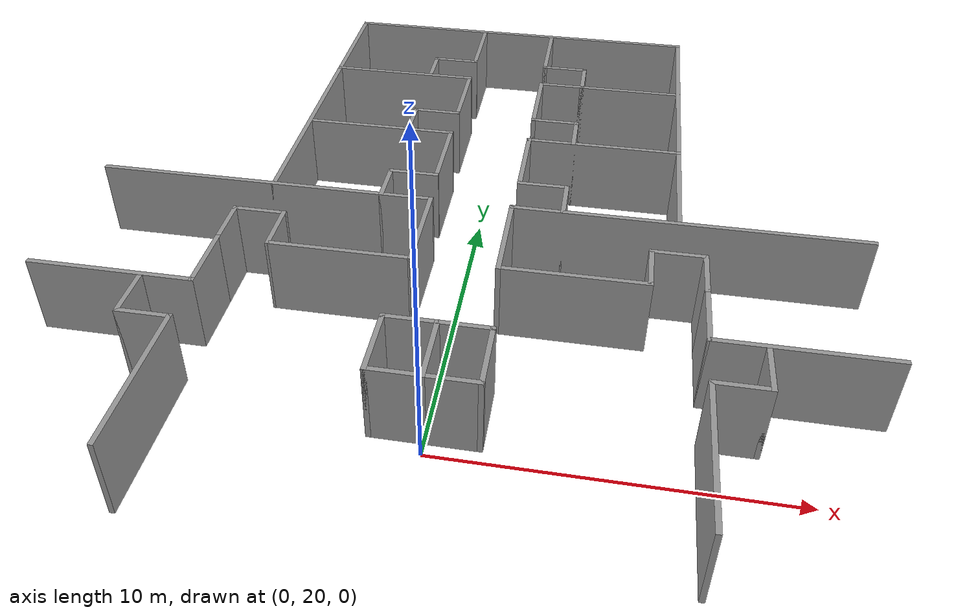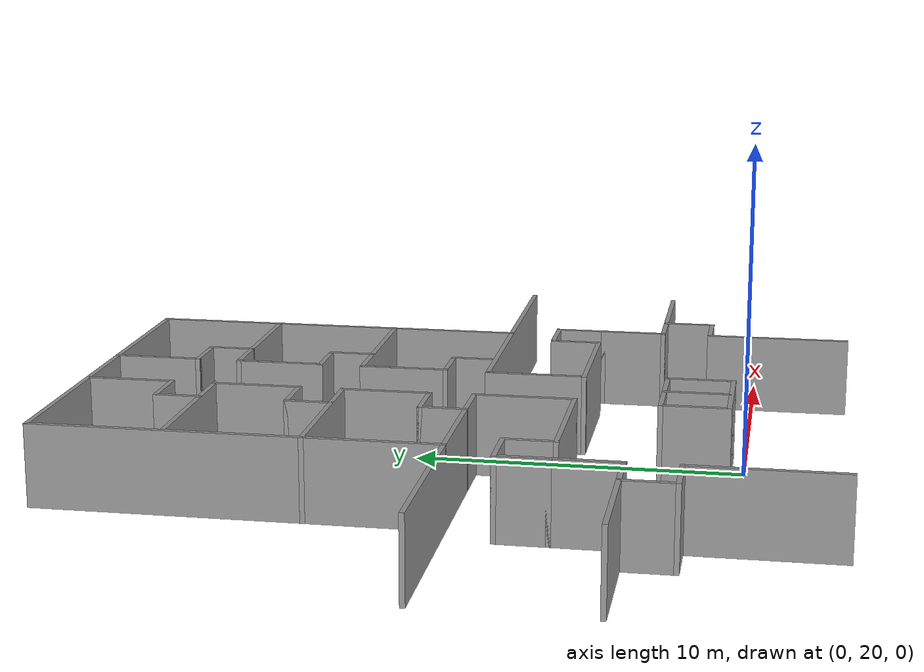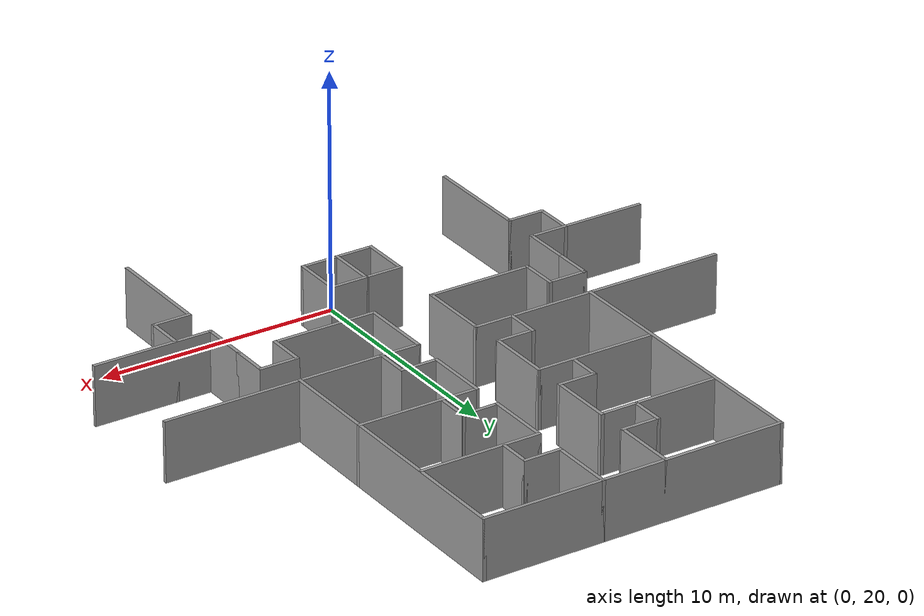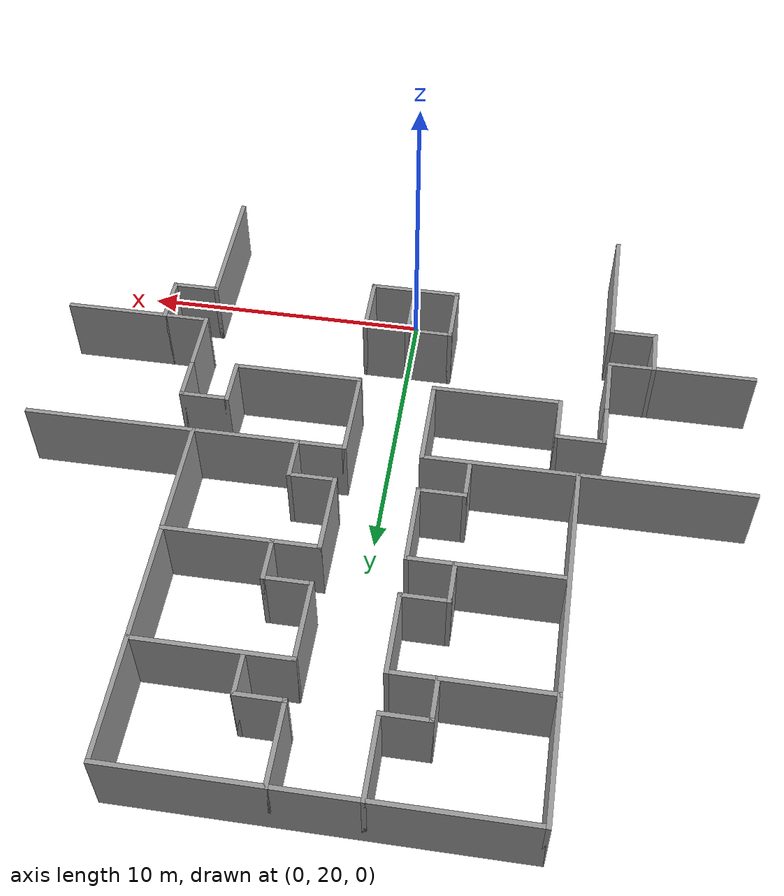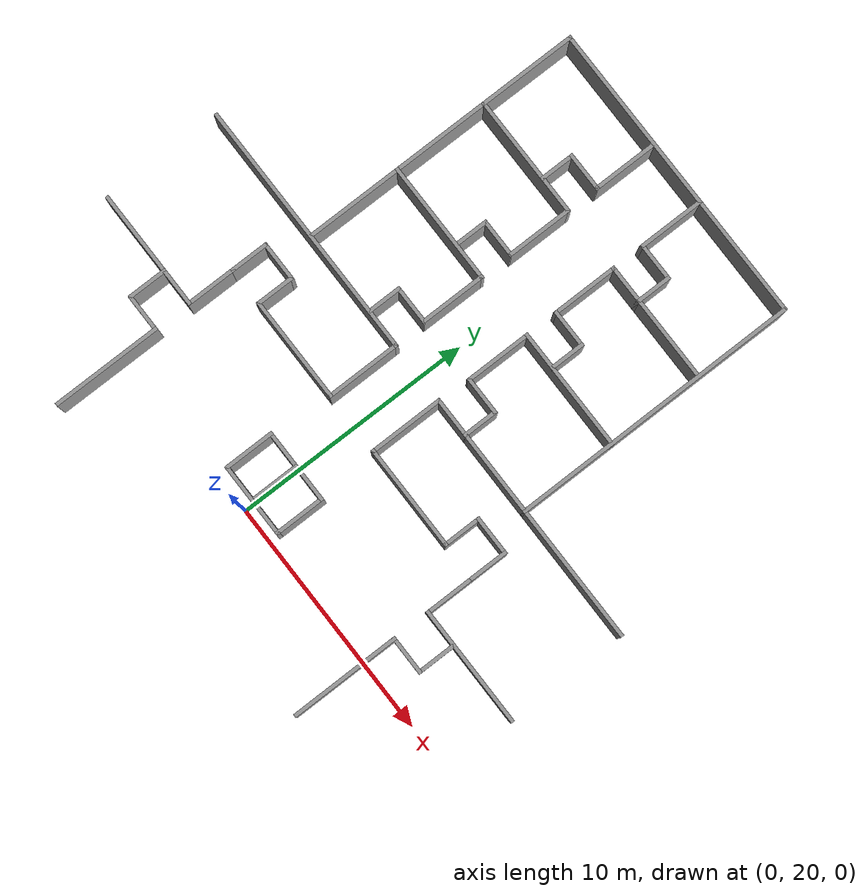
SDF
<sdf version="1.6">
 <model name="hospital__restricted_model">
  <pose>0.015862 19 0 0 -0 0</pose>
  <link name="Wall_100">
   <collision name="Wall_100_Collision">
    <geometry><box><size>2.8 0.15 2.5</size></box></geometry>
    <pose>0 0 1.25 0 -0 0</pose>
   </collision>
   <visual name="Wall_100_Visual">
    <pose>0 0 1.25 0 -0 0</pose>
    <geometry><box><size>2.8 0.15 2.5</size></box></geometry>
    <material>
     <script><uri>file://media/materials/scripts/gazebo.material</uri><name>Gazebo/Grey</name></script>
     <ambient>1 1 1 1</ambient>
    </material>
    <meta><layer>0</layer></meta>
   </visual>
   <pose>1.33414 19.675 0 0 -0 1.5708</pose>
  </link>
  <link name="Wall_110">
   <collision name="Wall_110_Collision">
    <geometry><box><size>3.15 0.15 2.5</size></box></geometry>
    <pose>0 0 1.25 0 -0 0</pose>
   </collision>
   <visual name="Wall_110_Visual">
    <pose>0 0 1.25 0 -0 0</pose>
    <geometry><box><size>3.15 0.15 2.5</size></box></geometry>
    <material>
     <script><uri>file://media/materials/scripts/gazebo.material</uri><name>Gazebo/Grey</name></script>
     <ambient>1 1 1 1</ambient>
    </material>
    <meta><layer>0</layer></meta>
   </visual>
   <pose>-0.015862 3.45 0 0 -0 0</pose>
  </link>
  <link name="Wall_112">
   <collision name="Wall_112_Collision">
    <geometry><box><size>3.15 0.15 2.5</size></box></geometry>
    <pose>0 0 1.25 0 -0 0</pose>
   </collision>
   <visual name="Wall_112_Visual">
    <pose>0 0 1.25 0 -0 0</pose>
    <geometry><box><size>3.15 0.15 2.5</size></box></geometry>
    <material>
     <script><uri>file://media/materials/scripts/gazebo.material</uri><name>Gazebo/Grey</name></script>
     <ambient>1 1 1 1</ambient>
    </material>
    <meta><layer>0</layer></meta>
   </visual>
   <pose>-0.015862 1.45 0 0 -0 0</pose>
  </link>
  <link name="Wall_114">
   <collision name="Wall_114_Collision">
    <geometry><box><size>2.15 0.15 2.5</size></box></geometry>
    <pose>0 0 1.25 0 -0 0</pose>
   </collision>
   <visual name="Wall_114_Visual">
    <pose>0 0 1.25 0 -0 0</pose>
    <geometry><box><size>2.15 0.15 2.5</size></box></geometry>
    <material>
     <script><uri>file://media/materials/scripts/gazebo.material</uri><name>Gazebo/Grey</name></script>
     <ambient>1 1 1 1</ambient>
    </material>
    <meta><layer>0</layer></meta>
   </visual>
   <pose>-1.51586 2.45 0 0 -0 -1.5708</pose>
  </link>
  <link name="Wall_116">
   <collision name="Wall_116_Collision">
    <geometry><box><size>2.15 0.15 2.5</size></box></geometry>
    <pose>0 0 1.25 0 -0 0</pose>
   </collision>
   <visual name="Wall_116_Visual">
    <pose>0 0 1.25 0 -0 0</pose>
    <geometry><box><size>2.15 0.15 2.5</size></box></geometry>
    <material>
     <script><uri>file://media/materials/scripts/gazebo.material</uri><name>Gazebo/Grey</name></script>
     <ambient>1 1 1 1</ambient>
    </material>
    <meta><layer>0</layer></meta>
   </visual>
   <pose>1.48414 2.45 0 0 -0 -1.5708</pose>
  </link>
  <link name="Wall_118">
   <collision name="Wall_118_Collision">
    <geometry><box><size>2.15 0.15 2.5</size></box></geometry>
    <pose>0 0 1.25 0 -0 0</pose>
   </collision>
   <visual name="Wall_118_Visual">
    <pose>0 0 1.25 0 -0 0</pose>
    <geometry><box><size>2.15 0.15 2.5</size></box></geometry>
    <material>
     <script><uri>file://media/materials/scripts/gazebo.material</uri><name>Gazebo/Grey</name></script>
     <ambient>1 1 1 1</ambient>
    </material>
    <meta><layer>0</layer></meta>
   </visual>
   <pose>-0.015862 2.45 0 0 -0 -1.5708</pose>
  </link>
  <link name="Wall_153">
   <collision name="Wall_153_Collision">
    <geometry><box><size>1.7 0.15 2.5</size></box></geometry>
    <pose>0 0 1.25 0 -0 0</pose>
   </collision>
   <visual name="Wall_153_Visual">
    <pose>0 0 1.25 0 -0 0</pose>
    <geometry><box><size>1.7 0.15 2.5</size></box></geometry>
    <material>
     <script><uri>file://media/materials/scripts/gazebo.material</uri><name>Gazebo/Grey</name></script>
     <ambient>1 1 1 1</ambient>
    </material>
    <meta><layer>0</layer></meta>
   </visual>
   <pose>-8.61586 3.225 0 0 -0 1.5708</pose>
  </link>
  <link name="Wall_155">
   <collision name="Wall_155_Collision">
    <geometry><box><size>1.65 0.15 2.5</size></box></geometry>
    <pose>0 0 1.25 0 -0 0</pose>
   </collision>
   <visual name="Wall_155_Visual">
    <pose>0 0 1.25 0 -0 0</pose>
    <geometry><box><size>1.65 0.15 2.5</size></box></geometry>
    <material>
     <script><uri>file://media/materials/scripts/gazebo.material</uri><name>Gazebo/Grey</name></script>
     <ambient>1 1 1 1</ambient>
    </material>
    <meta><layer>0</layer></meta>
   </visual>
   <pose>-7.86586 2.45 0 0 -0 0</pose>
  </link>
  <link name="Wall_157">
   <collision name="Wall_157_Collision">
    <geometry><box><size>1.65 0.15 2.5</size></box></geometry>
    <pose>0 0 1.25 0 -0 0</pose>
   </collision>
   <visual name="Wall_157_Visual">
    <pose>0 0 1.25 0 -0 0</pose>
    <geometry><box><size>1.65 0.15 2.5</size></box></geometry>
    <material>
     <script><uri>file://media/materials/scripts/gazebo.material</uri><name>Gazebo/Grey</name></script>
     <ambient>1 1 1 1</ambient>
    </material>
    <meta><layer>0</layer></meta>
   </visual>
   <pose>-5.56586 6.75 0 0 -0 1.5708</pose>
  </link>
  <link name="Wall_159">
   <collision name="Wall_159_Collision">
    <geometry><box><size>1.7 0.15 2.5</size></box></geometry>
    <pose>0 0 1.25 0 -0 0</pose>
   </collision>
   <visual name="Wall_159_Visual">
    <pose>0 0 1.25 0 -0 0</pose>
    <geometry><box><size>1.7 0.15 2.5</size></box></geometry>
    <material>
     <script><uri>file://media/materials/scripts/gazebo.material</uri><name>Gazebo/Grey</name></script>
     <ambient>1 1 1 1</ambient>
    </material>
    <meta><layer>0</layer></meta>
   </visual>
   <pose>-6.34086 7.5 0 0 -0 3.14159</pose>
  </link>
  <link name="Wall_161">
   <collision name="Wall_161_Collision">
    <geometry><box><size>1.65 0.15 2.5</size></box></geometry>
    <pose>0 0 1.25 0 -0 0</pose>
   </collision>
   <visual name="Wall_161_Visual">
    <pose>0 0 1.25 0 -0 0</pose>
    <geometry><box><size>1.65 0.15 2.5</size></box></geometry>
    <material>
     <script><uri>file://media/materials/scripts/gazebo.material</uri><name>Gazebo/Grey</name></script>
     <ambient>1 1 1 1</ambient>
    </material>
    <meta><layer>0</layer></meta>
   </visual>
   <pose>-7.11586 6.75 0 0 -0 -1.5708</pose>
  </link>
  <link name="Wall_163">
   <collision name="Wall_163_Collision">
    <geometry><box><size>1.5 0.15 2.5</size></box></geometry>
    <pose>0 0 1.25 0 -0 0</pose>
   </collision>
   <visual name="Wall_163_Visual">
    <pose>0 0 1.25 0 -0 0</pose>
    <geometry><box><size>1.5 0.15 2.5</size></box></geometry>
    <material>
     <script><uri>file://media/materials/scripts/gazebo.material</uri><name>Gazebo/Grey</name></script>
     <ambient>1 1 1 1</ambient>
    </material>
    <meta><layer>0</layer></meta>
   </visual>
   <pose>-2.86586 9.675 0 0 -0 1.5708</pose>
  </link>
  <link name="Wall_168">
   <collision name="Wall_168_Collision">
    <geometry><box><size>1.65 0.15 2.5</size></box></geometry>
    <pose>0 0 1.25 0 -0 0</pose>
   </collision>
   <visual name="Wall_168_Visual">
    <pose>0 0 1.25 0 -0 0</pose>
    <geometry><box><size>1.65 0.15 2.5</size></box></geometry>
    <material>
     <script><uri>file://media/materials/scripts/gazebo.material</uri><name>Gazebo/Grey</name></script>
     <ambient>1 1 1 1</ambient>
    </material>
    <meta><layer>0</layer></meta>
   </visual>
   <pose>-2.11586 10.35 0 0 -0 0</pose>
  </link>
  <link name="Wall_170">
   <collision name="Wall_170_Collision">
    <geometry><box><size>1.65 0.15 2.5</size></box></geometry>
    <pose>0 0 1.25 0 -0 0</pose>
   </collision>
   <visual name="Wall_170_Visual">
    <pose>0 0 1.25 0 -0 0</pose>
    <geometry><box><size>1.65 0.15 2.5</size></box></geometry>
    <material>
     <script><uri>file://media/materials/scripts/gazebo.material</uri><name>Gazebo/Grey</name></script>
     <ambient>1 1 1 1</ambient>
    </material>
    <meta><layer>0</layer></meta>
   </visual>
   <pose>2.08414 10.35 0 0 -0 0</pose>
  </link>
  <link name="Wall_172">
   <collision name="Wall_172_Collision">
    <geometry><box><size>1.5 0.15 2.5</size></box></geometry>
    <pose>0 0 1.25 0 -0 0</pose>
   </collision>
   <visual name="Wall_172_Visual">
    <pose>0 0 1.25 0 -0 0</pose>
    <geometry><box><size>1.5 0.15 2.5</size></box></geometry>
    <material>
     <script><uri>file://media/materials/scripts/gazebo.material</uri><name>Gazebo/Grey</name></script>
     <ambient>1 1 1 1</ambient>
    </material>
    <meta><layer>0</layer></meta>
   </visual>
   <pose>2.83414 9.675 0 0 -0 -1.5708</pose>
  </link>
  <link name="Wall_174">
   <collision name="Wall_174_Collision">
    <geometry><box><size>1.5 0.15 2.5</size></box></geometry>
    <pose>0 0 1.25 0 -0 0</pose>
   </collision>
   <visual name="Wall_174_Visual">
    <pose>0 0 1.25 0 -0 0</pose>
    <geometry><box><size>1.5 0.15 2.5</size></box></geometry>
    <material>
     <script><uri>file://media/materials/scripts/gazebo.material</uri><name>Gazebo/Grey</name></script>
     <ambient>1 1 1 1</ambient>
    </material>
    <meta><layer>0</layer></meta>
   </visual>
   <pose>-2.86586 13.675 0 0 -0 -1.5708</pose>
  </link>
  <link name="Wall_176">
   <collision name="Wall_176_Collision">
    <geometry><box><size>1.65 0.15 2.5</size></box></geometry>
    <pose>0 0 1.25 0 -0 0</pose>
   </collision>
   <visual name="Wall_176_Visual">
    <pose>0 0 1.25 0 -0 0</pose>
    <geometry><box><size>1.65 0.15 2.5</size></box></geometry>
    <material>
     <script><uri>file://media/materials/scripts/gazebo.material</uri><name>Gazebo/Grey</name></script>
     <ambient>1 1 1 1</ambient>
    </material>
    <meta><layer>0</layer></meta>
   </visual>
   <pose>-2.11586 14.35 0 0 -0 0</pose>
  </link>
  <link name="Wall_178">
   <collision name="Wall_178_Collision">
    <geometry><box><size>1.5 0.15 2.5</size></box></geometry>
    <pose>0 0 1.25 0 -0 0</pose>
   </collision>
   <visual name="Wall_178_Visual">
    <pose>0 0 1.25 0 -0 0</pose>
    <geometry><box><size>1.5 0.15 2.5</size></box></geometry>
    <material>
     <script><uri>file://media/materials/scripts/gazebo.material</uri><name>Gazebo/Grey</name></script>
     <ambient>1 1 1 1</ambient>
    </material>
    <meta><layer>0</layer></meta>
   </visual>
   <pose>-2.86586 17.675 0 0 -0 1.5708</pose>
  </link>
  <link name="Wall_180">
   <collision name="Wall_180_Collision">
    <geometry><box><size>1.65 0.15 2.5</size></box></geometry>
    <pose>0 0 1.25 0 -0 0</pose>
   </collision>
   <visual name="Wall_180_Visual">
    <pose>0 0 1.25 0 -0 0</pose>
    <geometry><box><size>1.65 0.15 2.5</size></box></geometry>
    <material>
     <script><uri>file://media/materials/scripts/gazebo.material</uri><name>Gazebo/Grey</name></script>
     <ambient>1 1 1 1</ambient>
    </material>
    <meta><layer>0</layer></meta>
   </visual>
   <pose>-2.11586 18.35 0 0 -0 0</pose>
  </link>
  <link name="Wall_183">
   <collision name="Wall_183_Collision">
    <geometry><box><size>1.65 0.15 2.5</size></box></geometry>
    <pose>0 0 1.25 0 -0 0</pose>
   </collision>
   <visual name="Wall_183_Visual">
    <pose>0 0 1.25 0 -0 0</pose>
    <geometry><box><size>1.65 0.15 2.5</size></box></geometry>
    <material>
     <script><uri>file://media/materials/scripts/gazebo.material</uri><name>Gazebo/Grey</name></script>
     <ambient>1 1 1 1</ambient>
    </material>
    <meta><layer>0</layer></meta>
   </visual>
   <pose>2.08414 14.35 0 0 -0 0</pose>
  </link>
  <link name="Wall_185">
   <collision name="Wall_185_Collision">
    <geometry><box><size>1.5 0.15 2.5</size></box></geometry>
    <pose>0 0 1.25 0 -0 0</pose>
   </collision>
   <visual name="Wall_185_Visual">
    <pose>0 0 1.25 0 -0 0</pose>
    <geometry><box><size>1.5 0.15 2.5</size></box></geometry>
    <material>
     <script><uri>file://media/materials/scripts/gazebo.material</uri><name>Gazebo/Grey</name></script>
     <ambient>1 1 1 1</ambient>
    </material>
    <meta><layer>0</layer></meta>
   </visual>
   <pose>2.83414 13.675 0 0 -0 -1.5708</pose>
  </link>
  <link name="Wall_187">
   <collision name="Wall_187_Collision">
    <geometry><box><size>1.65 0.15 2.5</size></box></geometry>
    <pose>0 0 1.25 0 -0 0</pose>
   </collision>
   <visual name="Wall_187_Visual">
    <pose>0 0 1.25 0 -0 0</pose>
    <geometry><box><size>1.65 0.15 2.5</size></box></geometry>
    <material>
     <script><uri>file://media/materials/scripts/gazebo.material</uri><name>Gazebo/Grey</name></script>
     <ambient>1 1 1 1</ambient>
    </material>
    <meta><layer>0</layer></meta>
   </visual>
   <pose>2.08414 18.35 0 0 -0 0</pose>
  </link>
  <link name="Wall_189">
   <collision name="Wall_189_Collision">
    <geometry><box><size>1.5 0.15 2.5</size></box></geometry>
    <pose>0 0 1.25 0 -0 0</pose>
   </collision>
   <visual name="Wall_189_Visual">
    <pose>0 0 1.25 0 -0 0</pose>
    <geometry><box><size>1.5 0.15 2.5</size></box></geometry>
    <material>
     <script><uri>file://media/materials/scripts/gazebo.material</uri><name>Gazebo/Grey</name></script>
     <ambient>1 1 1 1</ambient>
    </material>
    <meta><layer>0</layer></meta>
   </visual>
   <pose>2.83414 17.675 0 0 -0 -1.5708</pose>
  </link>
  <link name="Wall_192">
   <collision name="Wall_192_Collision">
    <geometry><box><size>1.65 0.15 2.5</size></box></geometry>
    <pose>0 0 1.25 0 -0 0</pose>
   </collision>
   <visual name="Wall_192_Visual">
    <pose>0 0 1.25 0 -0 0</pose>
    <geometry><box><size>1.65 0.15 2.5</size></box></geometry>
    <material>
     <script><uri>file://media/materials/scripts/gazebo.material</uri><name>Gazebo/Grey</name></script>
     <ambient>1 1 1 1</ambient>
    </material>
    <meta><layer>0</layer></meta>
   </visual>
   <pose>5.53414 6.75 0 0 -0 1.5708</pose>
  </link>
  <link name="Wall_194">
   <collision name="Wall_194_Collision">
    <geometry><box><size>1.7 0.15 2.5</size></box></geometry>
    <pose>0 0 1.25 0 -0 0</pose>
   </collision>
   <visual name="Wall_194_Visual">
    <pose>0 0 1.25 0 -0 0</pose>
    <geometry><box><size>1.7 0.15 2.5</size></box></geometry>
    <material>
     <script><uri>file://media/materials/scripts/gazebo.material</uri><name>Gazebo/Grey</name></script>
     <ambient>1 1 1 1</ambient>
    </material>
    <meta><layer>0</layer></meta>
   </visual>
   <pose>6.30914 7.5 0 0 -0 0</pose>
  </link>
  <link name="Wall_196">
   <collision name="Wall_196_Collision">
    <geometry><box><size>1.65 0.15 2.5</size></box></geometry>
    <pose>0 0 1.25 0 -0 0</pose>
   </collision>
   <visual name="Wall_196_Visual">
    <pose>0 0 1.25 0 -0 0</pose>
    <geometry><box><size>1.65 0.15 2.5</size></box></geometry>
    <material>
     <script><uri>file://media/materials/scripts/gazebo.material</uri><name>Gazebo/Grey</name></script>
     <ambient>1 1 1 1</ambient>
    </material>
    <meta><layer>0</layer></meta>
   </visual>
   <pose>7.08414 6.75 0 0 -0 -1.5708</pose>
  </link>
  <link name="Wall_198">
   <collision name="Wall_198_Collision">
    <geometry><box><size>1.7 0.15 2.5</size></box></geometry>
    <pose>0 0 1.25 0 -0 0</pose>
   </collision>
   <visual name="Wall_198_Visual">
    <pose>0 0 1.25 0 -0 0</pose>
    <geometry><box><size>1.7 0.15 2.5</size></box></geometry>
    <material>
     <script><uri>file://media/materials/scripts/gazebo.material</uri><name>Gazebo/Grey</name></script>
     <ambient>1 1 1 1</ambient>
    </material>
    <meta><layer>0</layer></meta>
   </visual>
   <pose>8.58414 3.225 0 0 -0 -1.5708</pose>
  </link>
  <link name="Wall_200">
   <collision name="Wall_200_Collision">
    <geometry><box><size>1.65 0.15 2.5</size></box></geometry>
    <pose>0 0 1.25 0 -0 0</pose>
   </collision>
   <visual name="Wall_200_Visual">
    <pose>0 0 1.25 0 -0 0</pose>
    <geometry><box><size>1.65 0.15 2.5</size></box></geometry>
    <material>
     <script><uri>file://media/materials/scripts/gazebo.material</uri><name>Gazebo/Grey</name></script>
     <ambient>1 1 1 1</ambient>
    </material>
    <meta><layer>0</layer></meta>
   </visual>
   <pose>7.83414 2.45 0 0 -0 3.14159</pose>
  </link>
  <link name="Wall_28">
   <collision name="Wall_28_Collision">
    <geometry><box><size>4.6 0.15 2.5</size></box></geometry>
    <pose>0 0 1.25 0 -0 0</pose>
   </collision>
   <visual name="Wall_28_Visual">
    <pose>0 0 1.25 0 -0 0</pose>
    <geometry><box><size>4.6 0.15 2.5</size></box></geometry>
    <material>
     <script><uri>file://media/materials/scripts/gazebo.material</uri><name>Gazebo/Grey</name></script>
     <ambient>1 1 1 1</ambient>
    </material>
    <meta><layer>0</layer></meta>
   </visual>
   <pose>-7.11586 0.225001 0 0 -0 -1.5708</pose>
  </link>
  <link name="Wall_30">
   <collision name="Wall_30_Collision">
    <geometry><box><size>5.05 0.15 2.5</size></box></geometry>
    <pose>0 0 1.25 0 -0 0</pose>
   </collision>
   <visual name="Wall_30_Visual">
    <pose>0 0 1.25 0 -0 0</pose>
    <geometry><box><size>5.05 0.15 2.5</size></box></geometry>
    <material>
     <script><uri>file://media/materials/scripts/gazebo.material</uri><name>Gazebo/Grey</name></script>
     <ambient>1 1 1 1</ambient>
    </material>
    <meta><layer>0</layer></meta>
   </visual>
   <pose>-9.56586 4 0 0 -0 3.14159</pose>
  </link>
  <link name="Wall_32">
   <collision name="Wall_32_Collision">
    <geometry><box><size>2.15 0.15 2.5</size></box></geometry>
    <pose>0 0 1.25 0 -0 0</pose>
   </collision>
   <visual name="Wall_32_Visual">
    <pose>0 0 1.25 0 -0 0</pose>
    <geometry><box><size>2.15 0.15 2.5</size></box></geometry>
    <material>
     <script><uri>file://media/materials/scripts/gazebo.material</uri><name>Gazebo/Grey</name></script>
     <ambient>1 1 1 1</ambient>
    </material>
    <meta><layer>0</layer></meta>
   </visual>
   <pose>-7.11586 5 0 0 -0 1.5708</pose>
  </link>
  <link name="Wall_34">
   <collision name="Wall_34_Collision">
    <geometry><box><size>4.425 0.15 2.5</size></box></geometry>
    <pose>0 0 1.25 0 -0 0</pose>
   </collision>
   <visual name="Wall_34_Visual">
    <pose>0 0 1.25 0 -0 0</pose>
    <geometry><box><size>4.425 0.15 2.5</size></box></geometry>
    <material>
     <script><uri>file://media/materials/scripts/gazebo.material</uri><name>Gazebo/Grey</name></script>
     <ambient>1 1 1 1</ambient>
    </material>
    <meta><layer>0</layer></meta>
   </visual>
   <pose>-3.42836 6 0 0 -0 0</pose>
  </link>
  <link name="Wall_36">
   <collision name="Wall_36_Collision">
    <geometry><box><size>10.875 0.15 2.5</size></box></geometry>
    <pose>0 0 1.25 0 -0 0</pose>
   </collision>
   <visual name="Wall_36_Visual">
    <pose>0 0 1.25 0 -0 0</pose>
    <geometry><box><size>10.875 0.15 2.5</size></box></geometry>
    <material>
     <script><uri>file://media/materials/scripts/gazebo.material</uri><name>Gazebo/Grey</name></script>
     <ambient>1 1 1 1</ambient>
    </material>
    <meta><layer>0</layer></meta>
   </visual>
   <pose>-6.65336 9 0 0 -0 0</pose>
  </link>
  <link name="Wall_38">
   <collision name="Wall_38_Collision">
    <geometry><box><size>2.75 0.15 2.5</size></box></geometry>
    <pose>0 0 1.25 0 -0 0</pose>
   </collision>
   <visual name="Wall_38_Visual">
    <pose>0 0 1.25 0 -0 0</pose>
    <geometry><box><size>2.75 0.15 2.5</size></box></geometry>
    <material>
     <script><uri>file://media/materials/scripts/gazebo.material</uri><name>Gazebo/Grey</name></script>
     <ambient>1 1 1 1</ambient>
    </material>
    <meta><layer>0</layer></meta>
   </visual>
   <pose>-1.36586 11.7 0 0 -0 1.5708</pose>
  </link>
  <link name="Wall_40">
   <collision name="Wall_40_Collision">
    <geometry><box><size>3.15 0.15 2.5</size></box></geometry>
    <pose>0 0 1.25 0 -0 0</pose>
   </collision>
   <visual name="Wall_40_Visual">
    <pose>0 0 1.25 0 -0 0</pose>
    <geometry><box><size>3.15 0.15 2.5</size></box></geometry>
    <material>
     <script><uri>file://media/materials/scripts/gazebo.material</uri><name>Gazebo/Grey</name></script>
     <ambient>1 1 1 1</ambient>
    </material>
    <meta><layer>0</layer></meta>
   </visual>
   <pose>-1.29086 7.5 0 0 -0 1.5708</pose>
  </link>
  <link name="Wall_42">
   <collision name="Wall_42_Collision">
    <geometry><box><size>5.15 0.15 2.5</size></box></geometry>
    <pose>0 0 1.25 0 -0 0</pose>
   </collision>
   <visual name="Wall_42_Visual">
    <pose>0 0 1.25 0 -0 0</pose>
    <geometry><box><size>5.15 0.15 2.5</size></box></geometry>
    <material>
     <script><uri>file://media/materials/scripts/gazebo.material</uri><name>Gazebo/Grey</name></script>
     <ambient>1 1 1 1</ambient>
    </material>
    <meta><layer>0</layer></meta>
   </visual>
   <pose>-3.86586 13 0 0 -0 3.14159</pose>
  </link>
  <link name="Wall_44">
   <collision name="Wall_44_Collision">
    <geometry><box><size>12.15 0.15 2.5</size></box></geometry>
    <pose>0 0 1.25 0 -0 0</pose>
   </collision>
   <visual name="Wall_44_Visual">
    <pose>0 0 1.25 0 -0 0</pose>
    <geometry><box><size>12.15 0.15 2.5</size></box></geometry>
    <material>
     <script><uri>file://media/materials/scripts/gazebo.material</uri><name>Gazebo/Grey</name></script>
     <ambient>1 1 1 1</ambient>
    </material>
    <meta><layer>0</layer></meta>
   </visual>
   <pose>-6.36586 15 0 0 -0 1.5708</pose>
  </link>
  <link name="Wall_46">
   <collision name="Wall_46_Collision">
    <geometry><box><size>5.15 0.15 2.5</size></box></geometry>
    <pose>0 0 1.25 0 -0 0</pose>
   </collision>
   <visual name="Wall_46_Visual">
    <pose>0 0 1.25 0 -0 0</pose>
    <geometry><box><size>5.15 0.15 2.5</size></box></geometry>
    <material>
     <script><uri>file://media/materials/scripts/gazebo.material</uri><name>Gazebo/Grey</name></script>
     <ambient>1 1 1 1</ambient>
    </material>
    <meta><layer>0</layer></meta>
   </visual>
   <pose>-3.86586 17 0 0 -0 3.14159</pose>
  </link>
  <link name="Wall_48">
   <collision name="Wall_48_Collision">
    <geometry><box><size>12.85 0.15 2.5</size></box></geometry>
    <pose>0 0 1.25 0 -0 0</pose>
   </collision>
   <visual name="Wall_48_Visual">
    <pose>0 0 1.25 0 -0 0</pose>
    <geometry><box><size>12.85 0.15 2.5</size></box></geometry>
    <material>
     <script><uri>file://media/materials/scripts/gazebo.material</uri><name>Gazebo/Grey</name></script>
     <ambient>1 1 1 1</ambient>
    </material>
    <meta><layer>0</layer></meta>
   </visual>
   <pose>-0.015862 21 0 0 -0 0</pose>
  </link>
  <link name="Wall_54">
   <collision name="Wall_54_Collision">
    <geometry><box><size>2.75 0.15 2.5</size></box></geometry>
    <pose>0 0 1.25 0 -0 0</pose>
   </collision>
   <visual name="Wall_54_Visual">
    <pose>0 0 1.25 0 -0 0</pose>
    <geometry><box><size>2.75 0.15 2.5</size></box></geometry>
    <material>
     <script><uri>file://media/materials/scripts/gazebo.material</uri><name>Gazebo/Grey</name></script>
     <ambient>1 1 1 1</ambient>
    </material>
    <meta><layer>0</layer></meta>
   </visual>
   <pose>-1.36586 15.7 0 0 -0 1.5708</pose>
  </link>
  <link name="Wall_56">
   <collision name="Wall_56_Collision">
    <geometry><box><size>2.75 0.15 2.5</size></box></geometry>
    <pose>0 0 1.25 0 -0 0</pose>
   </collision>
   <visual name="Wall_56_Visual">
    <pose>0 0 1.25 0 -0 0</pose>
    <geometry><box><size>2.75 0.15 2.5</size></box></geometry>
    <material>
     <script><uri>file://media/materials/scripts/gazebo.material</uri><name>Gazebo/Grey</name></script>
     <ambient>1 1 1 1</ambient>
    </material>
    <meta><layer>0</layer></meta>
   </visual>
   <pose>-1.36586 19.7 0 0 -0 1.5708</pose>
  </link>
  <link name="Wall_62">
   <collision name="Wall_62_Collision">
    <geometry><box><size>10.875 0.15 2.5</size></box></geometry>
    <pose>0 0 1.25 0 -0 0</pose>
   </collision>
   <visual name="Wall_62_Visual">
    <pose>0 0 1.25 0 -0 0</pose>
    <geometry><box><size>10.875 0.15 2.5</size></box></geometry>
    <material>
     <script><uri>file://media/materials/scripts/gazebo.material</uri><name>Gazebo/Grey</name></script>
     <ambient>1 1 1 1</ambient>
    </material>
    <meta><layer>0</layer></meta>
   </visual>
   <pose>6.62164 9 0 0 -0 0</pose>
  </link>
  <link name="Wall_78">
   <collision name="Wall_78_Collision">
    <geometry><box><size>4.6 0.15 2.5</size></box></geometry>
    <pose>0 0 1.25 0 -0 0</pose>
   </collision>
   <visual name="Wall_78_Visual">
    <pose>0 0 1.25 0 -0 0</pose>
    <geometry><box><size>4.6 0.15 2.5</size></box></geometry>
    <material>
     <script><uri>file://media/materials/scripts/gazebo.material</uri><name>Gazebo/Grey</name></script>
     <ambient>1 1 1 1</ambient>
    </material>
    <meta><layer>0</layer></meta>
   </visual>
   <pose>7.08414 0.225001 0 0 -0 1.5708</pose>
  </link>
  <link name="Wall_82">
   <collision name="Wall_82_Collision">
    <geometry><box><size>5.05 0.15 2.5</size></box></geometry>
    <pose>0 0 1.25 0 -0 0</pose>
   </collision>
   <visual name="Wall_82_Visual">
    <pose>0 0 1.25 0 -0 0</pose>
    <geometry><box><size>5.05 0.15 2.5</size></box></geometry>
    <material>
     <script><uri>file://media/materials/scripts/gazebo.material</uri><name>Gazebo/Grey</name></script>
     <ambient>1 1 1 1</ambient>
    </material>
    <meta><layer>0</layer></meta>
   </visual>
   <pose>9.53414 4 0 0 -0 0</pose>
  </link>
  <link name="Wall_84">
   <collision name="Wall_84_Collision">
    <geometry><box><size>2.15 0.15 2.5</size></box></geometry>
    <pose>0 0 1.25 0 -0 0</pose>
   </collision>
   <visual name="Wall_84_Visual">
    <pose>0 0 1.25 0 -0 0</pose>
    <geometry><box><size>2.15 0.15 2.5</size></box></geometry>
    <material>
     <script><uri>file://media/materials/scripts/gazebo.material</uri><name>Gazebo/Grey</name></script>
     <ambient>1 1 1 1</ambient>
    </material>
    <meta><layer>0</layer></meta>
   </visual>
   <pose>7.08414 5 0 0 -0 1.5708</pose>
  </link>
  <link name="Wall_86">
   <collision name="Wall_86_Collision">
    <geometry><box><size>4.425 0.15 2.5</size></box></geometry>
    <pose>0 0 1.25 0 -0 0</pose>
   </collision>
   <visual name="Wall_86_Visual">
    <pose>0 0 1.25 0 -0 0</pose>
    <geometry><box><size>4.425 0.15 2.5</size></box></geometry>
    <material>
     <script><uri>file://media/materials/scripts/gazebo.material</uri><name>Gazebo/Grey</name></script>
     <ambient>1 1 1 1</ambient>
    </material>
    <meta><layer>0</layer></meta>
   </visual>
   <pose>3.39664 6 0 0 -0 3.14159</pose>
  </link>
  <link name="Wall_88">
   <collision name="Wall_88_Collision">
    <geometry><box><size>3.15 0.15 2.5</size></box></geometry>
    <pose>0 0 1.25 0 -0 0</pose>
   </collision>
   <visual name="Wall_88_Visual">
    <pose>0 0 1.25 0 -0 0</pose>
    <geometry><box><size>3.15 0.15 2.5</size></box></geometry>
    <material>
     <script><uri>file://media/materials/scripts/gazebo.material</uri><name>Gazebo/Grey</name></script>
     <ambient>1 1 1 1</ambient>
    </material>
    <meta><layer>0</layer></meta>
   </visual>
   <pose>1.25914 7.5 0 0 -0 1.5708</pose>
  </link>
  <link name="Wall_90">
   <collision name="Wall_90_Collision">
    <geometry><box><size>12.15 0.15 2.5</size></box></geometry>
    <pose>0 0 1.25 0 -0 0</pose>
   </collision>
   <visual name="Wall_90_Visual">
    <pose>0 0 1.25 0 -0 0</pose>
    <geometry><box><size>12.15 0.15 2.5</size></box></geometry>
    <material>
     <script><uri>file://media/materials/scripts/gazebo.material</uri><name>Gazebo/Grey</name></script>
     <ambient>1 1 1 1</ambient>
    </material>
    <meta><layer>0</layer></meta>
   </visual>
   <pose>6.33414 15 0 0 -0 -1.5708</pose>
  </link>
  <link name="Wall_92">
   <collision name="Wall_92_Collision">
    <geometry><box><size>2.8 0.15 2.5</size></box></geometry>
    <pose>0 0 1.25 0 -0 0</pose>
   </collision>
   <visual name="Wall_92_Visual">
    <pose>0 0 1.25 0 -0 0</pose>
    <geometry><box><size>2.8 0.15 2.5</size></box></geometry>
    <material>
     <script><uri>file://media/materials/scripts/gazebo.material</uri><name>Gazebo/Grey</name></script>
     <ambient>1 1 1 1</ambient>
    </material>
    <meta><layer>0</layer></meta>
   </visual>
   <pose>1.33414 11.675 0 0 -0 1.5708</pose>
  </link>
  <link name="Wall_94">
   <collision name="Wall_94_Collision">
    <geometry><box><size>5.15 0.15 2.5</size></box></geometry>
    <pose>0 0 1.25 0 -0 0</pose>
   </collision>
   <visual name="Wall_94_Visual">
    <pose>0 0 1.25 0 -0 0</pose>
    <geometry><box><size>5.15 0.15 2.5</size></box></geometry>
    <material>
     <script><uri>file://media/materials/scripts/gazebo.material</uri><name>Gazebo/Grey</name></script>
     <ambient>1 1 1 1</ambient>
    </material>
    <meta><layer>0</layer></meta>
   </visual>
   <pose>3.83414 13 0 0 -0 0</pose>
  </link>
  <link name="Wall_96">
   <collision name="Wall_96_Collision">
    <geometry><box><size>5.15 0.15 2.5</size></box></geometry>
    <pose>0 0 1.25 0 -0 0</pose>
   </collision>
   <visual name="Wall_96_Visual">
    <pose>0 0 1.25 0 -0 0</pose>
    <geometry><box><size>5.15 0.15 2.5</size></box></geometry>
    <material>
     <script><uri>file://media/materials/scripts/gazebo.material</uri><name>Gazebo/Grey</name></script>
     <ambient>1 1 1 1</ambient>
    </material>
    <meta><layer>0</layer></meta>
   </visual>
   <pose>3.83414 17 0 0 -0 0</pose>
  </link>
  <link name="Wall_98">
   <collision name="Wall_98_Collision">
    <geometry><box><size>2.8 0.15 2.5</size></box></geometry>
    <pose>0 0 1.25 0 -0 0</pose>
   </collision>
   <visual name="Wall_98_Visual">
    <pose>0 0 1.25 0 -0 0</pose>
    <geometry><box><size>2.8 0.15 2.5</size></box></geometry>
    <material>
     <script><uri>file://media/materials/scripts/gazebo.material</uri><name>Gazebo/Grey</name></script>
     <ambient>1 1 1 1</ambient>
    </material>
    <meta><layer>0</layer></meta>
   </visual>
   <pose>1.33414 15.675 0 0 -0 -1.5708</pose>
  </link>
  <static>1</static>
 </model>
</sdf>
